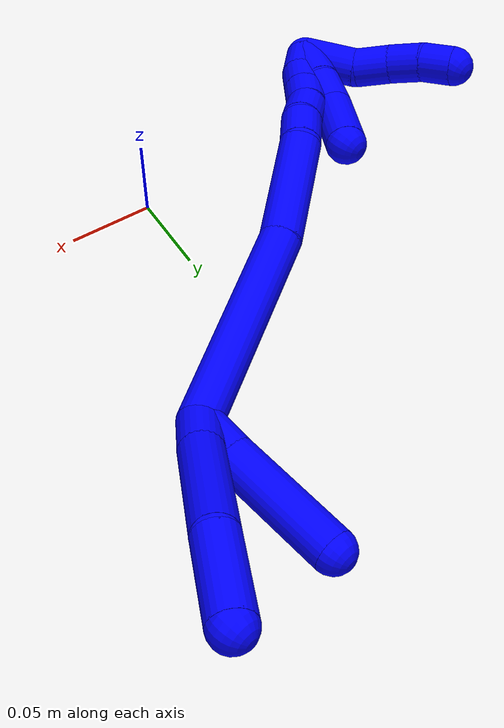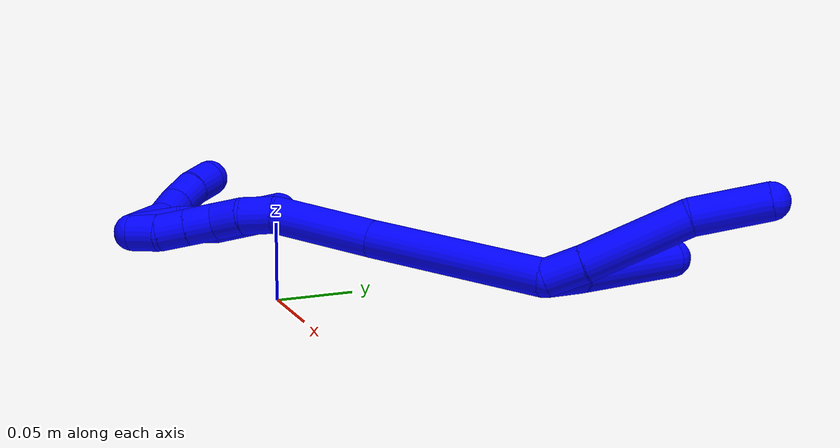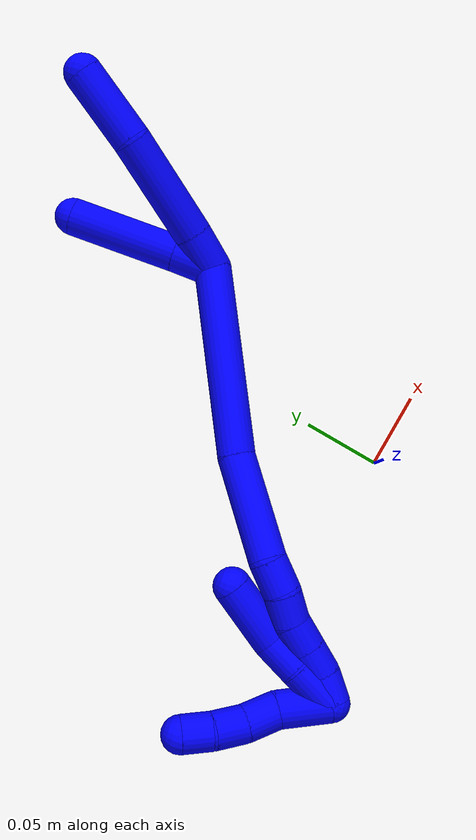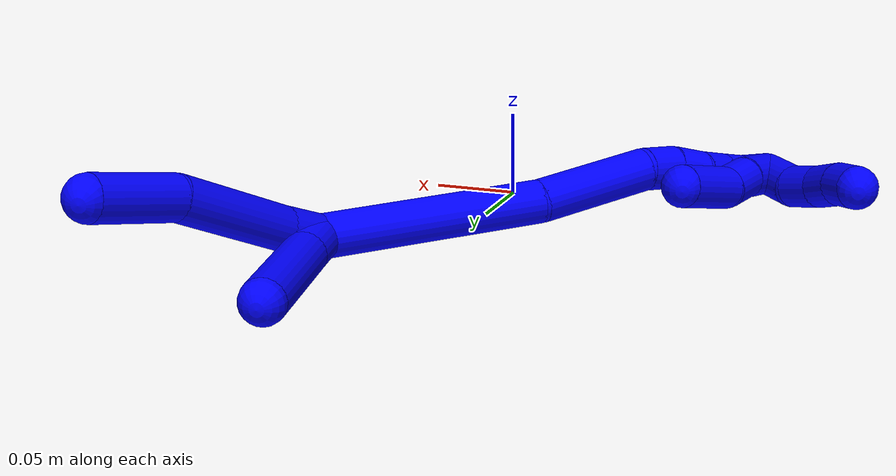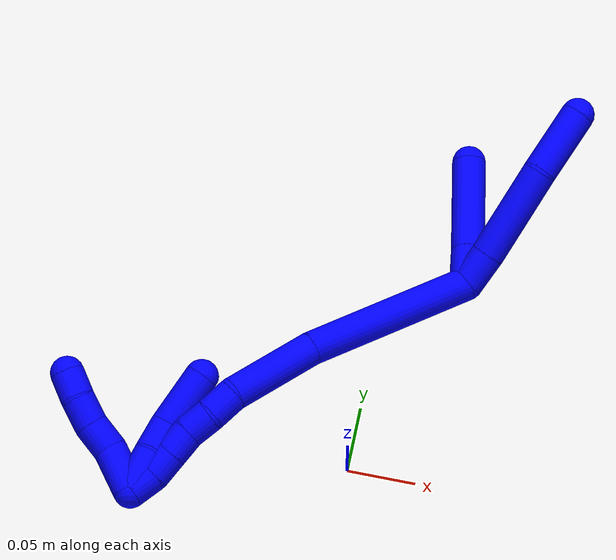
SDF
<sdf version="1.7">
 <world name="default">
  <model name="1">
   <static>0</static>
   <link name="1">
    <collision name="collision-cylinder-e_1_2_8">
     <pose>0.002596 0.008966 -0.009318 -2.37544 0.198146 -0.483657</pose>
     <geometry><cylinder><radius>0.0125</radius><length>0.026378</length></cylinder></geometry>
     <surface>
      <friction><ode><mu>1.16</mu><mu2>1.16</mu2><slip1>0</slip1><slip2>0</slip2></ode></friction>
      <contact><ode><kp>1e+06</kp><kd>1</kd><max_vel>0</max_vel><min_depth>0.001</min_depth></ode></contact>
     </surface>
    </collision>
    <visual name="visual-cylinder-e_1_2_8">
     <pose>0.002596 0.008966 -0.009318 -2.37544 0.198146 -0.483657</pose>
     <geometry><cylinder><radius>0.0125</radius><length>0.026378</length></cylinder></geometry>
     <material><ambient>0 0 1 1</ambient></material>
    </visual>
    <collision name="collision-cylinder-e_2_8_9">
     <pose>0.009701 0.042512 -0.044718 -2.38585 0.12514 -0.313083</pose>
     <geometry><cylinder><radius>0.0125</radius><length>0.072243</length></cylinder></geometry>
     <surface>
      <friction><ode><mu>1.16</mu><mu2>1.16</mu2><slip1>0</slip1><slip2>0</slip2></ode></friction>
      <contact><ode><kp>1e+06</kp><kd>1</kd><max_vel>0</max_vel><min_depth>0.001</min_depth></ode></contact>
     </surface>
    </collision>
    <visual name="visual-cylinder-e_2_8_9">
     <pose>0.009701 0.042512 -0.044718 -2.38585 0.12514 -0.313083</pose>
     <geometry><cylinder><radius>0.0125</radius><length>0.072243</length></cylinder></geometry>
     <material><ambient>0 0 1 1</ambient></material>
    </visual>
    <collision name="collision-cylinder-e_3_9_6">
     <pose>0.021567 0.08066 -0.091335 -2.55769 0.290461 -0.905831</pose>
     <geometry><cylinder><radius>0.0125</radius><length>0.051379</length></cylinder></geometry>
     <surface>
      <friction><ode><mu>1.16</mu><mu2>1.16</mu2><slip1>0</slip1><slip2>0</slip2></ode></friction>
      <contact><ode><kp>1e+06</kp><kd>1</kd><max_vel>0</max_vel><min_depth>0.001</min_depth></ode></contact>
     </surface>
    </collision>
    <visual name="visual-cylinder-e_3_9_6">
     <pose>0.021567 0.08066 -0.091335 -2.55769 0.290461 -0.905831</pose>
     <geometry><cylinder><radius>0.0125</radius><length>0.051379</length></cylinder></geometry>
     <material><ambient>0 0 1 1</ambient></material>
    </visual>
    <collision name="collision-cylinder-e_1_2_10">
     <pose>0.000977 0.000371 -0.013543 -3.11418 0.072007 -2.41428</pose>
     <geometry><cylinder><radius>0.0125</radius><length>0.027167</length></cylinder></geometry>
     <surface>
      <friction><ode><mu>1.16</mu><mu2>1.16</mu2><slip1>0</slip1><slip2>0</slip2></ode></friction>
      <contact><ode><kp>1e+06</kp><kd>1</kd><max_vel>0</max_vel><min_depth>0.001</min_depth></ode></contact>
     </surface>
    </collision>
    <visual name="visual-cylinder-e_1_2_10">
     <pose>0.000977 0.000371 -0.013543 -3.11418 0.072007 -2.41428</pose>
     <geometry><cylinder><radius>0.0125</radius><length>0.027167</length></cylinder></geometry>
     <material><ambient>0 0 1 1</ambient></material>
    </visual>
    <collision name="collision-cylinder-e_2_10_5">
     <pose>0.002852 0.001786 -0.063477 -3.11294 0.024643 -1.42057</pose>
     <geometry><cylinder><radius>0.0125</radius><length>0.072833</length></cylinder></geometry>
     <surface>
      <friction><ode><mu>1.16</mu><mu2>1.16</mu2><slip1>0</slip1><slip2>0</slip2></ode></friction>
      <contact><ode><kp>1e+06</kp><kd>1</kd><max_vel>0</max_vel><min_depth>0.001</min_depth></ode></contact>
     </surface>
    </collision>
    <visual name="visual-cylinder-e_2_10_5">
     <pose>0.002852 0.001786 -0.063477 -3.11294 0.024643 -1.42057</pose>
     <geometry><cylinder><radius>0.0125</radius><length>0.072833</length></cylinder></geometry>
     <material><ambient>0 0 1 1</ambient></material>
    </visual>
    <collision name="collision-cylinder-e_1_2_11">
     <pose>-0.046048 -0.034506 0.027168 0.903822 -0.809076 -0.409829</pose>
     <geometry><cylinder><radius>0.0125</radius><length>0.127266</length></cylinder></geometry>
     <surface>
      <friction><ode><mu>1.16</mu><mu2>1.16</mu2><slip1>0</slip1><slip2>0</slip2></ode></friction>
      <contact><ode><kp>1e+06</kp><kd>1</kd><max_vel>0</max_vel><min_depth>0.001</min_depth></ode></contact>
     </surface>
    </collision>
    <visual name="visual-cylinder-e_1_2_11">
     <pose>-0.046048 -0.034506 0.027168 0.903822 -0.809076 -0.409829</pose>
     <geometry><cylinder><radius>0.0125</radius><length>0.127266</length></cylinder></geometry>
     <material><ambient>0 0 1 1</ambient></material>
    </visual>
    <collision name="collision-cylinder-e_2_11_12">
     <pose>-0.116657 -0.083973 0.074091 0.6482 -0.780929 -0.274807</pose>
     <geometry><cylinder><radius>0.0125</radius><length>0.069781</length></cylinder></geometry>
     <surface>
      <friction><ode><mu>1.16</mu><mu2>1.16</mu2><slip1>0</slip1><slip2>0</slip2></ode></friction>
      <contact><ode><kp>1e+06</kp><kd>1</kd><max_vel>0</max_vel><min_depth>0.001</min_depth></ode></contact>
     </surface>
    </collision>
    <visual name="visual-cylinder-e_2_11_12">
     <pose>-0.116657 -0.083973 0.074091 0.6482 -0.780929 -0.274807</pose>
     <geometry><cylinder><radius>0.0125</radius><length>0.069781</length></cylinder></geometry>
     <material><ambient>0 0 1 1</ambient></material>
    </visual>
    <collision name="collision-cylinder-e_3_12_13">
     <pose>-0.146756 -0.105237 0.101372 0.697118 -0.513686 -0.190311</pose>
     <geometry><cylinder><radius>0.0125</radius><length>0.022541</length></cylinder></geometry>
     <surface>
      <friction><ode><mu>1.16</mu><mu2>1.16</mu2><slip1>0</slip1><slip2>0</slip2></ode></friction>
      <contact><ode><kp>1e+06</kp><kd>1</kd><max_vel>0</max_vel><min_depth>0.001</min_depth></ode></contact>
     </surface>
    </collision>
    <visual name="visual-cylinder-e_3_12_13">
     <pose>-0.146756 -0.105237 0.101372 0.697118 -0.513686 -0.190311</pose>
     <geometry><cylinder><radius>0.0125</radius><length>0.022541</length></cylinder></geometry>
     <material><ambient>0 0 1 1</ambient></material>
    </visual>
    <collision name="collision-cylinder-e_4_13_14">
     <pose>-0.156572 -0.118899 0.114417 0.927297 -0.435244 -0.22023</pose>
     <geometry><cylinder><radius>0.0125</radius><length>0.020291</length></cylinder></geometry>
     <surface>
      <friction><ode><mu>1.16</mu><mu2>1.16</mu2><slip1>0</slip1><slip2>0</slip2></ode></friction>
      <contact><ode><kp>1e+06</kp><kd>1</kd><max_vel>0</max_vel><min_depth>0.001</min_depth></ode></contact>
     </surface>
    </collision>
    <visual name="visual-cylinder-e_4_13_14">
     <pose>-0.156572 -0.118899 0.114417 0.927297 -0.435244 -0.22023</pose>
     <geometry><cylinder><radius>0.0125</radius><length>0.020291</length></cylinder></geometry>
     <material><ambient>0 0 1 1</ambient></material>
    </visual>
    <collision name="collision-cylinder-e_5_14_15">
     <pose>-0.164162 -0.132345 0.127231 0.695394 -0.335477 -0.122583</pose>
     <geometry><cylinder><radius>0.0125</radius><length>0.020119</length></cylinder></geometry>
     <surface>
      <friction><ode><mu>1.16</mu><mu2>1.16</mu2><slip1>0</slip1><slip2>0</slip2></ode></friction>
      <contact><ode><kp>1e+06</kp><kd>1</kd><max_vel>0</max_vel><min_depth>0.001</min_depth></ode></contact>
     </surface>
    </collision>
    <visual name="visual-cylinder-e_5_14_15">
     <pose>-0.164162 -0.132345 0.127231 0.695394 -0.335477 -0.122583</pose>
     <geometry><cylinder><radius>0.0125</radius><length>0.020119</length></cylinder></geometry>
     <material><ambient>0 0 1 1</ambient></material>
    </visual>
    <collision name="collision-cylinder-e_6_15_16">
     <pose>-0.170818 -0.144434 0.141788 0.690648 -0.34101 -0.123719</pose>
     <geometry><cylinder><radius>0.0125</radius><length>0.02</length></cylinder></geometry>
     <surface>
      <friction><ode><mu>1.16</mu><mu2>1.16</mu2><slip1>0</slip1><slip2>0</slip2></ode></friction>
      <contact><ode><kp>1e+06</kp><kd>1</kd><max_vel>0</max_vel><min_depth>0.001</min_depth></ode></contact>
     </surface>
    </collision>
    <visual name="visual-cylinder-e_6_15_16">
     <pose>-0.170818 -0.144434 0.141788 0.690648 -0.34101 -0.123719</pose>
     <geometry><cylinder><radius>0.0125</radius><length>0.02</length></cylinder></geometry>
     <material><ambient>0 0 1 1</ambient></material>
    </visual>
    <collision name="collision-cylinder-e_7_16_1">
     <pose>-0.179764 -0.156219 0.154987 0.772342 -0.594498 -0.247818</pose>
     <geometry><cylinder><radius>0.0125</radius><length>0.02</length></cylinder></geometry>
     <surface>
      <friction><ode><mu>1.16</mu><mu2>1.16</mu2><slip1>0</slip1><slip2>0</slip2></ode></friction>
      <contact><ode><kp>1e+06</kp><kd>1</kd><max_vel>0</max_vel><min_depth>0.001</min_depth></ode></contact>
     </surface>
    </collision>
    <visual name="visual-cylinder-e_7_16_1">
     <pose>-0.179764 -0.156219 0.154987 0.772342 -0.594498 -0.247818</pose>
     <geometry><cylinder><radius>0.0125</radius><length>0.02</length></cylinder></geometry>
     <material><ambient>0 0 1 1</ambient></material>
    </visual>
    <collision name="collision-cylinder-e_1_1_17">
     <pose>-0.181239 -0.155319 0.147072 -2.6921 0.262137 -1.04613</pose>
     <geometry><cylinder><radius>0.0125</radius><length>0.03184</length></cylinder></geometry>
     <surface>
      <friction><ode><mu>1.16</mu><mu2>1.16</mu2><slip1>0</slip1><slip2>0</slip2></ode></friction>
      <contact><ode><kp>1e+06</kp><kd>1</kd><max_vel>0</max_vel><min_depth>0.001</min_depth></ode></contact>
     </surface>
    </collision>
    <visual name="visual-cylinder-e_1_1_17">
     <pose>-0.181239 -0.155319 0.147072 -2.6921 0.262137 -1.04613</pose>
     <geometry><cylinder><radius>0.0125</radius><length>0.03184</length></cylinder></geometry>
     <material><ambient>0 0 1 1</ambient></material>
    </visual>
    <collision name="collision-cylinder-e_2_17_18">
     <pose>-0.172653 -0.145116 0.122499 -2.82432 0.376335 -1.7441</pose>
     <geometry><cylinder><radius>0.0125</radius><length>0.024274</length></cylinder></geometry>
     <surface>
      <friction><ode><mu>1.16</mu><mu2>1.16</mu2><slip1>0</slip1><slip2>0</slip2></ode></friction>
      <contact><ode><kp>1e+06</kp><kd>1</kd><max_vel>0</max_vel><min_depth>0.001</min_depth></ode></contact>
     </surface>
    </collision>
    <visual name="visual-cylinder-e_2_17_18">
     <pose>-0.172653 -0.145116 0.122499 -2.82432 0.376335 -1.7441</pose>
     <geometry><cylinder><radius>0.0125</radius><length>0.024274</length></cylinder></geometry>
     <material><ambient>0 0 1 1</ambient></material>
    </visual>
    <collision name="collision-cylinder-e_3_18_4">
     <pose>-0.161839 -0.129486 0.094614 -2.52712 0.29373 -0.872554</pose>
     <geometry><cylinder><radius>0.0125</radius><length>0.043887</length></cylinder></geometry>
     <surface>
      <friction><ode><mu>1.16</mu><mu2>1.16</mu2><slip1>0</slip1><slip2>0</slip2></ode></friction>
      <contact><ode><kp>1e+06</kp><kd>1</kd><max_vel>0</max_vel><min_depth>0.001</min_depth></ode></contact>
     </surface>
    </collision>
    <visual name="visual-cylinder-e_3_18_4">
     <pose>-0.161839 -0.129486 0.094614 -2.52712 0.29373 -0.872554</pose>
     <geometry><cylinder><radius>0.0125</radius><length>0.043887</length></cylinder></geometry>
     <material><ambient>0 0 1 1</ambient></material>
    </visual>
    <collision name="collision-cylinder-e_1_1_19">
     <pose>-0.191286 -0.166304 0.145033 2.87703 -0.345344 -1.83815</pose>
     <geometry><cylinder><radius>0.0125</radius><length>0.034986</length></cylinder></geometry>
     <surface>
      <friction><ode><mu>1.16</mu><mu2>1.16</mu2><slip1>0</slip1><slip2>0</slip2></ode></friction>
      <contact><ode><kp>1e+06</kp><kd>1</kd><max_vel>0</max_vel><min_depth>0.001</min_depth></ode></contact>
     </surface>
    </collision>
    <visual name="visual-cylinder-e_1_1_19">
     <pose>-0.191286 -0.166304 0.145033 2.87703 -0.345344 -1.83815</pose>
     <geometry><cylinder><radius>0.0125</radius><length>0.034986</length></cylinder></geometry>
     <material><ambient>0 0 1 1</ambient></material>
    </visual>
    <collision name="collision-cylinder-e_2_19_20">
     <pose>-0.204352 -0.173041 0.120445 2.86898 -0.669079 -2.38994</pose>
     <geometry><cylinder><radius>0.0125</radius><length>0.023036</length></cylinder></geometry>
     <surface>
      <friction><ode><mu>1.16</mu><mu2>1.16</mu2><slip1>0</slip1><slip2>0</slip2></ode></friction>
      <contact><ode><kp>1e+06</kp><kd>1</kd><max_vel>0</max_vel><min_depth>0.001</min_depth></ode></contact>
     </surface>
    </collision>
    <visual name="visual-cylinder-e_2_19_20">
     <pose>-0.204352 -0.173041 0.120445 2.86898 -0.669079 -2.38994</pose>
     <geometry><cylinder><radius>0.0125</radius><length>0.023036</length></cylinder></geometry>
     <material><ambient>0 0 1 1</ambient></material>
    </visual>
    <collision name="collision-cylinder-e_3_20_21">
     <pose>-0.217433 -0.175911 0.102625 3.09363 -0.576539 -2.98016</pose>
     <geometry><cylinder><radius>0.0125</radius><length>0.021778</length></cylinder></geometry>
     <surface>
      <friction><ode><mu>1.16</mu><mu2>1.16</mu2><slip1>0</slip1><slip2>0</slip2></ode></friction>
      <contact><ode><kp>1e+06</kp><kd>1</kd><max_vel>0</max_vel><min_depth>0.001</min_depth></ode></contact>
     </surface>
    </collision>
    <visual name="visual-cylinder-e_3_20_21">
     <pose>-0.217433 -0.175911 0.102625 3.09363 -0.576539 -2.98016</pose>
     <geometry><cylinder><radius>0.0125</radius><length>0.021778</length></cylinder></geometry>
     <material><ambient>0 0 1 1</ambient></material>
    </visual>
    <collision name="collision-cylinder-e_4_21_3">
     <pose>-0.22739 -0.177474 0.084311 3.01984 -0.409519 -2.57062</pose>
     <geometry><cylinder><radius>0.0125</radius><length>0.020199</length></cylinder></geometry>
     <surface>
      <friction><ode><mu>1.16</mu><mu2>1.16</mu2><slip1>0</slip1><slip2>0</slip2></ode></friction>
      <contact><ode><kp>1e+06</kp><kd>1</kd><max_vel>0</max_vel><min_depth>0.001</min_depth></ode></contact>
     </surface>
    </collision>
    <visual name="visual-cylinder-e_4_21_3">
     <pose>-0.22739 -0.177474 0.084311 3.01984 -0.409519 -2.57062</pose>
     <geometry><cylinder><radius>0.0125</radius><length>0.020199</length></cylinder></geometry>
     <material><ambient>0 0 1 1</ambient></material>
    </visual>
    <collision name="collision-sphere-3">
     <pose>-0.231411 -0.178599 0.075115 0 -0 0</pose>
     <geometry><sphere><radius>0.0125</radius></sphere></geometry>
     <surface>
      <friction><ode><mu>1.16</mu><mu2>1.16</mu2><slip1>0</slip1><slip2>0</slip2></ode></friction>
      <contact><ode><kp>1e+06</kp><kd>1</kd><max_vel>0</max_vel><min_depth>0.001</min_depth></ode></contact>
     </surface>
    </collision>
    <visual name="visual-sphere-3">
     <pose>-0.231411 -0.178599 0.075115 0 -0 0</pose>
     <geometry><sphere><radius>0.0125</radius></sphere></geometry>
     <material><ambient>0 0 1 1</ambient></material>
    </visual>
    <collision name="collision-sphere-21">
     <pose>-0.223369 -0.176349 0.093507 0 -0 0</pose>
     <geometry><sphere><radius>0.0125</radius></sphere></geometry>
     <surface>
      <friction><ode><mu>1.16</mu><mu2>1.16</mu2><slip1>0</slip1><slip2>0</slip2></ode></friction>
      <contact><ode><kp>1e+06</kp><kd>1</kd><max_vel>0</max_vel><min_depth>0.001</min_depth></ode></contact>
     </surface>
    </collision>
    <visual name="visual-sphere-21">
     <pose>-0.223369 -0.176349 0.093507 0 -0 0</pose>
     <geometry><sphere><radius>0.0125</radius></sphere></geometry>
     <material><ambient>0 0 1 1</ambient></material>
    </visual>
    <collision name="collision-sphere-20">
     <pose>-0.211497 -0.175474 0.111743 0 -0 0</pose>
     <geometry><sphere><radius>0.0125</radius></sphere></geometry>
     <surface>
      <friction><ode><mu>1.16</mu><mu2>1.16</mu2><slip1>0</slip1><slip2>0</slip2></ode></friction>
      <contact><ode><kp>1e+06</kp><kd>1</kd><max_vel>0</max_vel><min_depth>0.001</min_depth></ode></contact>
     </surface>
    </collision>
    <visual name="visual-sphere-20">
     <pose>-0.211497 -0.175474 0.111743 0 -0 0</pose>
     <geometry><sphere><radius>0.0125</radius></sphere></geometry>
     <material><ambient>0 0 1 1</ambient></material>
    </visual>
    <collision name="collision-sphere-19">
     <pose>-0.197208 -0.170608 0.129146 0 -0 0</pose>
     <geometry><sphere><radius>0.0125</radius></sphere></geometry>
     <surface>
      <friction><ode><mu>1.16</mu><mu2>1.16</mu2><slip1>0</slip1><slip2>0</slip2></ode></friction>
      <contact><ode><kp>1e+06</kp><kd>1</kd><max_vel>0</max_vel><min_depth>0.001</min_depth></ode></contact>
     </surface>
    </collision>
    <visual name="visual-sphere-19">
     <pose>-0.197208 -0.170608 0.129146 0 -0 0</pose>
     <geometry><sphere><radius>0.0125</radius></sphere></geometry>
     <material><ambient>0 0 1 1</ambient></material>
    </visual>
    <collision name="collision-sphere-5">
     <pose>0.003749 0.002829 -0.099867 0 -0 0</pose>
     <geometry><sphere><radius>0.0125</radius></sphere></geometry>
     <surface>
      <friction><ode><mu>1.16</mu><mu2>1.16</mu2><slip1>0</slip1><slip2>0</slip2></ode></friction>
      <contact><ode><kp>1e+06</kp><kd>1</kd><max_vel>0</max_vel><min_depth>0.001</min_depth></ode></contact>
     </surface>
    </collision>
    <visual name="visual-sphere-5">
     <pose>0.003749 0.002829 -0.099867 0 -0 0</pose>
     <geometry><sphere><radius>0.0125</radius></sphere></geometry>
     <material><ambient>0 0 1 1</ambient></material>
    </visual>
    <collision name="collision-sphere-10">
     <pose>0.001954 0.000743 -0.027086 0 -0 0</pose>
     <geometry><sphere><radius>0.0125</radius></sphere></geometry>
     <surface>
      <friction><ode><mu>1.16</mu><mu2>1.16</mu2><slip1>0</slip1><slip2>0</slip2></ode></friction>
      <contact><ode><kp>1e+06</kp><kd>1</kd><max_vel>0</max_vel><min_depth>0.001</min_depth></ode></contact>
     </surface>
    </collision>
    <visual name="visual-sphere-10">
     <pose>0.001954 0.000743 -0.027086 0 -0 0</pose>
     <geometry><sphere><radius>0.0125</radius></sphere></geometry>
     <material><ambient>0 0 1 1</ambient></material>
    </visual>
    <collision name="collision-sphere-6">
     <pose>0.028924 0.094229 -0.111871 0 -0 0</pose>
     <geometry><sphere><radius>0.0125</radius></sphere></geometry>
     <surface>
      <friction><ode><mu>1.16</mu><mu2>1.16</mu2><slip1>0</slip1><slip2>0</slip2></ode></friction>
      <contact><ode><kp>1e+06</kp><kd>1</kd><max_vel>0</max_vel><min_depth>0.001</min_depth></ode></contact>
     </surface>
    </collision>
    <visual name="visual-sphere-6">
     <pose>0.028924 0.094229 -0.111871 0 -0 0</pose>
     <geometry><sphere><radius>0.0125</radius></sphere></geometry>
     <material><ambient>0 0 1 1</ambient></material>
    </visual>
    <collision name="collision-sphere-9">
     <pose>0.014209 0.067091 -0.0708 0 -0 0</pose>
     <geometry><sphere><radius>0.0125</radius></sphere></geometry>
     <surface>
      <friction><ode><mu>1.16</mu><mu2>1.16</mu2><slip1>0</slip1><slip2>0</slip2></ode></friction>
      <contact><ode><kp>1e+06</kp><kd>1</kd><max_vel>0</max_vel><min_depth>0.001</min_depth></ode></contact>
     </surface>
    </collision>
    <visual name="visual-sphere-9">
     <pose>0.014209 0.067091 -0.0708 0 -0 0</pose>
     <geometry><sphere><radius>0.0125</radius></sphere></geometry>
     <material><ambient>0 0 1 1</ambient></material>
    </visual>
    <collision name="collision-sphere-2">
     <geometry><sphere><radius>0.0125</radius></sphere></geometry>
     <surface>
      <friction><ode><mu>1.16</mu><mu2>1.16</mu2><slip1>0</slip1><slip2>0</slip2></ode></friction>
      <contact><ode><kp>1e+06</kp><kd>1</kd><max_vel>0</max_vel><min_depth>0.001</min_depth></ode></contact>
     </surface>
    </collision>
    <visual name="visual-sphere-2">
     <geometry><sphere><radius>0.0125</radius></sphere></geometry>
     <material><ambient>0 0 1 1</ambient></material>
    </visual>
    <collision name="collision-sphere-8">
     <pose>0.005193 0.017932 -0.018636 0 -0 0</pose>
     <geometry><sphere><radius>0.0125</radius></sphere></geometry>
     <surface>
      <friction><ode><mu>1.16</mu><mu2>1.16</mu2><slip1>0</slip1><slip2>0</slip2></ode></friction>
      <contact><ode><kp>1e+06</kp><kd>1</kd><max_vel>0</max_vel><min_depth>0.001</min_depth></ode></contact>
     </surface>
    </collision>
    <visual name="visual-sphere-8">
     <pose>0.005193 0.017932 -0.018636 0 -0 0</pose>
     <geometry><sphere><radius>0.0125</radius></sphere></geometry>
     <material><ambient>0 0 1 1</ambient></material>
    </visual>
    <collision name="collision-sphere-11">
     <pose>-0.092096 -0.069012 0.054336 0 -0 0</pose>
     <geometry><sphere><radius>0.0125</radius></sphere></geometry>
     <surface>
      <friction><ode><mu>1.16</mu><mu2>1.16</mu2><slip1>0</slip1><slip2>0</slip2></ode></friction>
      <contact><ode><kp>1e+06</kp><kd>1</kd><max_vel>0</max_vel><min_depth>0.001</min_depth></ode></contact>
     </surface>
    </collision>
    <visual name="visual-sphere-11">
     <pose>-0.092096 -0.069012 0.054336 0 -0 0</pose>
     <geometry><sphere><radius>0.0125</radius></sphere></geometry>
     <material><ambient>0 0 1 1</ambient></material>
    </visual>
    <collision name="collision-sphere-12">
     <pose>-0.141218 -0.098935 0.093846 0 -0 0</pose>
     <geometry><sphere><radius>0.0125</radius></sphere></geometry>
     <surface>
      <friction><ode><mu>1.16</mu><mu2>1.16</mu2><slip1>0</slip1><slip2>0</slip2></ode></friction>
      <contact><ode><kp>1e+06</kp><kd>1</kd><max_vel>0</max_vel><min_depth>0.001</min_depth></ode></contact>
     </surface>
    </collision>
    <visual name="visual-sphere-12">
     <pose>-0.141218 -0.098935 0.093846 0 -0 0</pose>
     <geometry><sphere><radius>0.0125</radius></sphere></geometry>
     <material><ambient>0 0 1 1</ambient></material>
    </visual>
    <collision name="collision-sphere-13">
     <pose>-0.152294 -0.111539 0.108898 0 -0 0</pose>
     <geometry><sphere><radius>0.0125</radius></sphere></geometry>
     <surface>
      <friction><ode><mu>1.16</mu><mu2>1.16</mu2><slip1>0</slip1><slip2>0</slip2></ode></friction>
      <contact><ode><kp>1e+06</kp><kd>1</kd><max_vel>0</max_vel><min_depth>0.001</min_depth></ode></contact>
     </surface>
    </collision>
    <visual name="visual-sphere-13">
     <pose>-0.152294 -0.111539 0.108898 0 -0 0</pose>
     <geometry><sphere><radius>0.0125</radius></sphere></geometry>
     <material><ambient>0 0 1 1</ambient></material>
    </visual>
    <collision name="collision-sphere-14">
     <pose>-0.16085 -0.126259 0.119937 0 -0 0</pose>
     <geometry><sphere><radius>0.0125</radius></sphere></geometry>
     <surface>
      <friction><ode><mu>1.16</mu><mu2>1.16</mu2><slip1>0</slip1><slip2>0</slip2></ode></friction>
      <contact><ode><kp>1e+06</kp><kd>1</kd><max_vel>0</max_vel><min_depth>0.001</min_depth></ode></contact>
     </surface>
    </collision>
    <visual name="visual-sphere-14">
     <pose>-0.16085 -0.126259 0.119937 0 -0 0</pose>
     <geometry><sphere><radius>0.0125</radius></sphere></geometry>
     <material><ambient>0 0 1 1</ambient></material>
    </visual>
    <collision name="collision-sphere-15">
     <pose>-0.167474 -0.138431 0.134524 0 -0 0</pose>
     <geometry><sphere><radius>0.0125</radius></sphere></geometry>
     <surface>
      <friction><ode><mu>1.16</mu><mu2>1.16</mu2><slip1>0</slip1><slip2>0</slip2></ode></friction>
      <contact><ode><kp>1e+06</kp><kd>1</kd><max_vel>0</max_vel><min_depth>0.001</min_depth></ode></contact>
     </surface>
    </collision>
    <visual name="visual-sphere-15">
     <pose>-0.167474 -0.138431 0.134524 0 -0 0</pose>
     <geometry><sphere><radius>0.0125</radius></sphere></geometry>
     <material><ambient>0 0 1 1</ambient></material>
    </visual>
    <collision name="collision-sphere-16">
     <pose>-0.174162 -0.150438 0.149053 0 -0 0</pose>
     <geometry><sphere><radius>0.0125</radius></sphere></geometry>
     <surface>
      <friction><ode><mu>1.16</mu><mu2>1.16</mu2><slip1>0</slip1><slip2>0</slip2></ode></friction>
      <contact><ode><kp>1e+06</kp><kd>1</kd><max_vel>0</max_vel><min_depth>0.001</min_depth></ode></contact>
     </surface>
    </collision>
    <visual name="visual-sphere-16">
     <pose>-0.174162 -0.150438 0.149053 0 -0 0</pose>
     <geometry><sphere><radius>0.0125</radius></sphere></geometry>
     <material><ambient>0 0 1 1</ambient></material>
    </visual>
    <collision name="collision-sphere-1">
     <pose>-0.185365 -0.162 0.160921 0 -0 0</pose>
     <geometry><sphere><radius>0.0125</radius></sphere></geometry>
     <surface>
      <friction><ode><mu>1.16</mu><mu2>1.16</mu2><slip1>0</slip1><slip2>0</slip2></ode></friction>
      <contact><ode><kp>1e+06</kp><kd>1</kd><max_vel>0</max_vel><min_depth>0.001</min_depth></ode></contact>
     </surface>
    </collision>
    <visual name="visual-sphere-1">
     <pose>-0.185365 -0.162 0.160921 0 -0 0</pose>
     <geometry><sphere><radius>0.0125</radius></sphere></geometry>
     <material><ambient>0 0 1 1</ambient></material>
    </visual>
    <collision name="collision-sphere-18">
     <pose>-0.168193 -0.141595 0.111775 0 -0 0</pose>
     <geometry><sphere><radius>0.0125</radius></sphere></geometry>
     <surface>
      <friction><ode><mu>1.16</mu><mu2>1.16</mu2><slip1>0</slip1><slip2>0</slip2></ode></friction>
      <contact><ode><kp>1e+06</kp><kd>1</kd><max_vel>0</max_vel><min_depth>0.001</min_depth></ode></contact>
     </surface>
    </collision>
    <visual name="visual-sphere-18">
     <pose>-0.168193 -0.141595 0.111775 0 -0 0</pose>
     <geometry><sphere><radius>0.0125</radius></sphere></geometry>
     <material><ambient>0 0 1 1</ambient></material>
    </visual>
    <collision name="collision-sphere-17">
     <pose>-0.177113 -0.148638 0.133223 0 -0 0</pose>
     <geometry><sphere><radius>0.0125</radius></sphere></geometry>
     <surface>
      <friction><ode><mu>1.16</mu><mu2>1.16</mu2><slip1>0</slip1><slip2>0</slip2></ode></friction>
      <contact><ode><kp>1e+06</kp><kd>1</kd><max_vel>0</max_vel><min_depth>0.001</min_depth></ode></contact>
     </surface>
    </collision>
    <visual name="visual-sphere-17">
     <pose>-0.177113 -0.148638 0.133223 0 -0 0</pose>
     <geometry><sphere><radius>0.0125</radius></sphere></geometry>
     <material><ambient>0 0 1 1</ambient></material>
    </visual>
    <collision name="collision-sphere-4">
     <pose>-0.155486 -0.117377 0.077452 0 -0 0</pose>
     <geometry><sphere><radius>0.0125</radius></sphere></geometry>
     <surface>
      <friction><ode><mu>1.16</mu><mu2>1.16</mu2><slip1>0</slip1><slip2>0</slip2></ode></friction>
      <contact><ode><kp>1e+06</kp><kd>1</kd><max_vel>0</max_vel><min_depth>0.001</min_depth></ode></contact>
     </surface>
    </collision>
    <visual name="visual-sphere-4">
     <pose>-0.155486 -0.117377 0.077452 0 -0 0</pose>
     <geometry><sphere><radius>0.0125</radius></sphere></geometry>
     <material><ambient>0 0 1 1</ambient></material>
    </visual>
    <inertial>
     <pose>-0.088642 -0.063321 0.042887 0 -0 0</pose>
     <mass>0.75</mass>
     <inertia><ixx>4.2e-05</ixx><ixy>0</ixy><ixz>0</ixz><iyy>8e-06</iyy><iyz>0</iyz><izz>0.000202</izz></inertia>
    </inertial>
   </link>
   <pose>0.057024 0.158059 0.01216 1.55038 0.708166 0.202677</pose>
  </model>
 </world>
</sdf>
